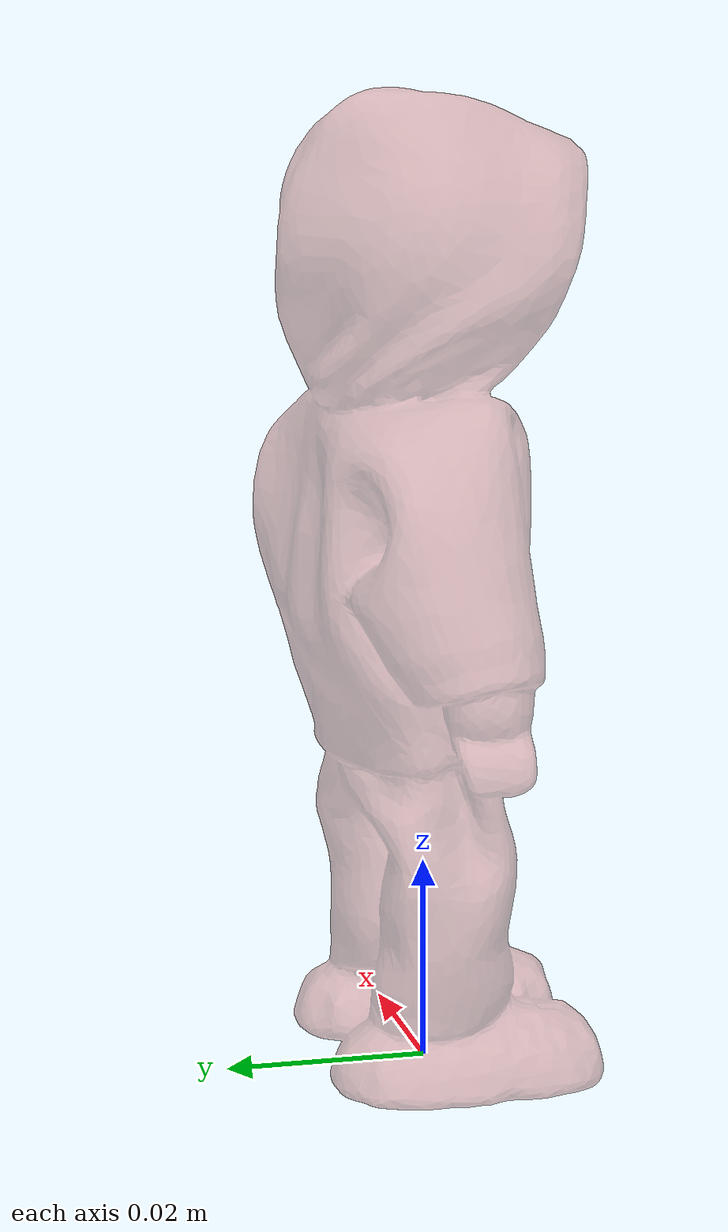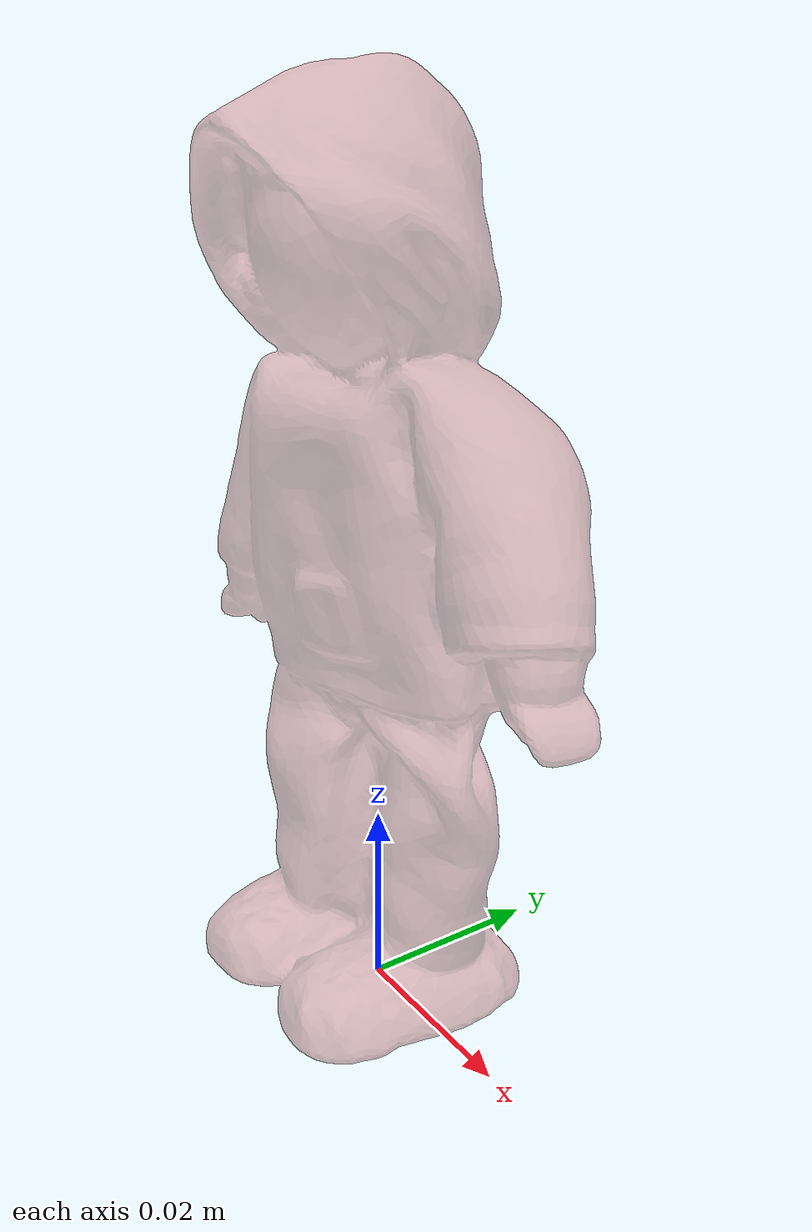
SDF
<?xml version="1.0"?>
<sdf version="1.7">
  <model name="3D_Dollhouse_Happy_Brother">
    <link name="3D_Dollhouse_Happy_Brother">
      <pose>0 0 0 0 0 0</pose>
      <inertial>
        <pose>0 0 0 0 0 0</pose>
        <mass>5.0e3</mass>
        <inertia>
          <ixx>16.8333</ixx>
          <ixy>0</ixy>
          <ixz>0</ixz>
          <iyy>16.8333</iyy>
          <iyz>0</iyz>
          <izz>33.3333</izz>
        </inertia>
      </inertial>
      <visual name="visual">
        <pose>0 0 0 0 0 0</pose>
        <geometry>
          <mesh>
            <uri>package://drake/examples/hydroelastic/python_nonconvex_mesh/3D_Dollhouse_Happy_Brother.obj</uri>
          </mesh>
        </geometry>
        <material>
          <diffuse>0.8 0.5 0.5 0.5</diffuse>
        </material>
      </visual>
      <collision name="collision">
        <pose>0 0 0 0 0 0</pose>
        <geometry>
          <mesh>
            <uri>package://drake/examples/hydroelastic/python_nonconvex_mesh/3D_Dollhouse_Happy_Brother_tetwild_tetgen.vtk</uri>
          </mesh>
        </geometry>
        <drake:proximity_properties>
          <drake:compliant_hydroelastic/>
          <drake:hydroelastic_modulus>1e3</drake:hydroelastic_modulus>
          <drake:mesh_resolution_hint>0.01</drake:mesh_resolution_hint>
          <!-- Both mu_dynamic and mu_static are used in Continuous system.
            Only mu_dynamic is used in Discrete system.
          -->
          <drake:mu_dynamic>1.0</drake:mu_dynamic>
          <drake:mu_static>1.0</drake:mu_static>
        </drake:proximity_properties>
      </collision>
    </link>
  </model>
</sdf>
